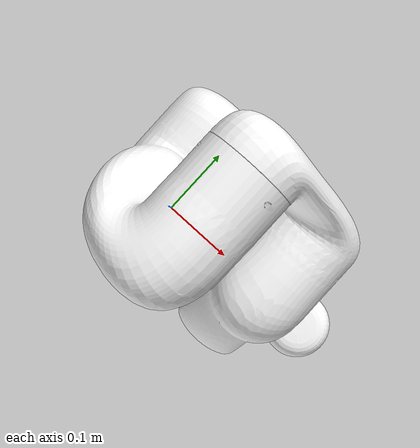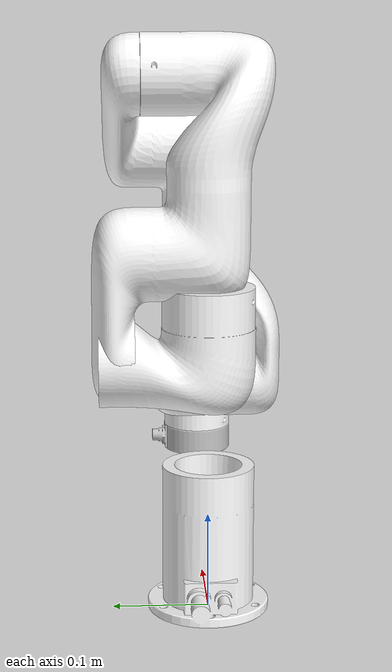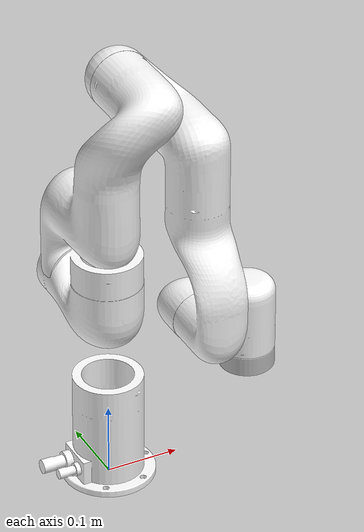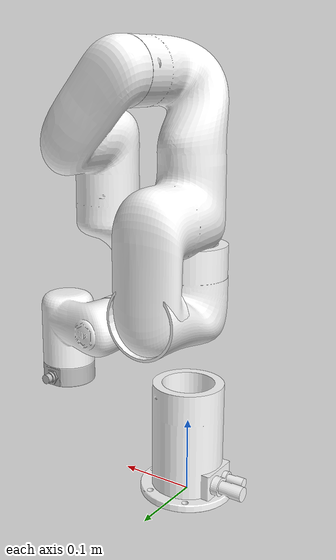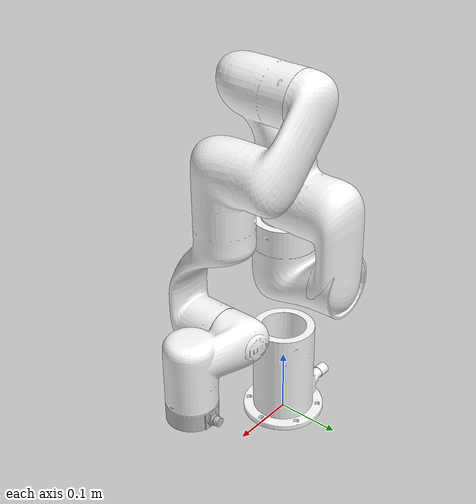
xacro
<?xml version='1.0' encoding='utf-8'?>
<robot xmlns:xacro="http://ros.org/wiki/xacro" name="xarm5">
  <xacro:arg name="prefix" default=""/>
  <xacro:arg name="ros_namespace" default="xarm"/>
  <xacro:arg name="limited" default="false"/>
  <xacro:arg name="effort_control" default="false"/>
  <xacro:arg name="velocity_control" default="false"/>

  <xacro:arg name="add_other_geometry" default="false"/>
  <xacro:arg name="geometry_type" default="box"/>
  <xacro:arg name="geometry_mass" default="0.1"/>
  <xacro:arg name="geometry_height" default="0.1"/>
  <xacro:arg name="geometry_radius" default="0.1"/>
  <xacro:arg name="geometry_length" default="0.1"/>
  <xacro:arg name="geometry_width" default="0.1"/>
  <xacro:arg name="geometry_mesh_filename" default=""/>
  <xacro:arg name="geometry_mesh_origin_xyz" default="0 0 0"/>
  <xacro:arg name="geometry_mesh_origin_rpy" default="0 0 0"/>
  <xacro:arg name="geometry_mesh_tcp_xyz" default="0 0 0"/>
  <xacro:arg name="geometry_mesh_tcp_rpy" default="0 0 0"/>

  <xacro:arg name="add_realsense_d435i" default="false"/>
  <xacro:arg name="model1300" default="false"/>

  <!-- load xarm5 robot -->
  <xacro:include filename="$(find xarm_description)/urdf/xarm5_robot_macro.xacro" />
  <xacro:xarm5_robot prefix="$(arg prefix)" namespace="$(arg ros_namespace)" limited="$(arg limited)"
    effort_control="$(arg effort_control)" velocity_control="$(arg velocity_control)"
    rs_d435i="$(arg add_realsense_d435i)"
    model1300="$(arg model1300)"
    add_other_geometry="$(arg add_other_geometry)"
    geometry_type="$(arg geometry_type)" geometry_mass="$(arg geometry_mass)"
    geometry_height="$(arg geometry_height)" geometry_radius="$(arg geometry_radius)"
    geometry_length="$(arg geometry_length)" geometry_width="$(arg geometry_width)"
    geometry_mesh_filename="$(arg geometry_mesh_filename)"
    geometry_mesh_origin_xyz="$(arg geometry_mesh_origin_xyz)" geometry_mesh_origin_rpy="$(arg geometry_mesh_origin_rpy)"
    geometry_mesh_tcp_xyz="$(arg geometry_mesh_tcp_xyz)" geometry_mesh_tcp_rpy="$(arg geometry_mesh_tcp_rpy)" />

</robot>

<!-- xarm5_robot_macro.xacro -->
<robot xmlns:xacro="http://ros.org/wiki/xacro" name="xarm5" >
  <xacro:macro name="xarm5_robot" params="prefix:='' namespace:='xarm' limited:='false' effort_control:='false'
    velocity_control:='false' attach_to:='world' xyz:='0 0 0' rpy:='0 0 0' load_gazebo_plugin:='true' rs_d435i:='false'
    model1300:='false'
    add_other_geometry:='false'
    geometry_type:='box' geometry_mass:='0.1'
    geometry_radius:='0.1' geometry_height:='0.1'
    geometry_length:='0.1' geometry_width:='0.1'
    geometry_mesh_filename:=''
    geometry_mesh_origin_xyz:='0 0 0'
    geometry_mesh_origin_rpy:='0 0 0'
    geometry_mesh_tcp_xyz:='0 0 0'
    geometry_mesh_tcp_rpy:='0 0 0' ">

    <!-- include xarm5 relative macros: -->
    <xacro:include filename="$(find xarm_description)/urdf/xarm5.urdf.xacro" />
    <xacro:include filename="$(find xarm_description)/urdf/xarm5.transmission.xacro" />
    <xacro:include filename="$(find xarm_description)/urdf/xarm5.gazebo.xacro" />

    <!-- gazebo_plugin -->
    <xacro:if value="${load_gazebo_plugin}">
    <xacro:include filename="$(find xarm_description)/urdf/common.gazebo.xacro" />
    <xacro:gazebo_ros_control_plugin namespace="${namespace}"/>
    </xacro:if>

    <!-- add one world link if no 'attach_to' specified  -->
    <xacro:if value="${attach_to == 'world'}">
      <link name="world" />
    </xacro:if>

    <joint name="world_joint" type="fixed">
      <parent link="${attach_to}" />
      <child link = "${prefix}link_base" />
      <origin xyz="${xyz}" rpy="${rpy}" />
    </joint>

    <xacro:if value="${limited}">
      <xacro:xarm5_urdf prefix="${prefix}"
        joint1_lower_limit="${-pi*0.99}" joint1_upper_limit="${pi*0.99}"
        joint2_lower_limit="${-2.059}" joint2_upper_limit="${2.0944}"
        joint3_lower_limit="${-pi*0.99}" joint3_upper_limit="${0.19198}"
        joint4_lower_limit="${-1.69297}" joint4_upper_limit="${pi*0.99}"
        joint5_lower_limit="${-pi*0.99}" joint5_upper_limit="${pi*0.99}"
        rs_d435i="${rs_d435i}" model1300="${model1300}"/>
    </xacro:if>
    <xacro:unless value="${limited}">
      <xacro:xarm5_urdf prefix="${prefix}" rs_d435i="${rs_d435i}" model1300="${model1300}"/>
    </xacro:unless>

    <xacro:xarm5_transmission prefix="${prefix}" hard_interface="$(eval 'EffortJointInterface' if ${effort_control} else 'VelocityJointInterface' if ${velocity_control} else 'PositionJointInterface')" />

    <xacro:xarm5_gazebo prefix="${prefix}" />

    <xacro:if value="${add_other_geometry}">
      <xacro:include filename="$(find xarm_description)/urdf/other_geometry.urdf.xacro" />
      <xacro:other_geometry prefix="${prefix}" attach_to="${prefix}link_eef"
        geometry_type="${geometry_type}" geometry_mass="${geometry_mass}"
        geometry_height="${geometry_height}" geometry_radius="${geometry_radius}"
        geometry_length="${geometry_length}" geometry_width="${geometry_width}"
        geometry_mesh_filename="${geometry_mesh_filename}"
        geometry_mesh_origin_xyz="${geometry_mesh_origin_xyz}" geometry_mesh_origin_rpy="${geometry_mesh_origin_rpy}"
        geometry_mesh_tcp_xyz="${geometry_mesh_tcp_xyz}" geometry_mesh_tcp_rpy="${geometry_mesh_tcp_rpy}"
      />
    </xacro:if>

  </xacro:macro>

</robot>

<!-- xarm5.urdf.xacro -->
<robot xmlns:xacro="http://ros.org/wiki/xacro">

  <xacro:macro name="xarm5_urdf" params="prefix
    joint1_lower_limit:=${-2.0*pi}  joint1_upper_limit:=${2.0*pi}
    joint2_lower_limit:=${-2.059}  joint2_upper_limit:=${2.0944}
    joint3_lower_limit:=${-3.927}  joint3_upper_limit:=${0.19198}
    joint4_lower_limit:=${-1.69297}  joint4_upper_limit:=${pi}
    joint5_lower_limit:=${-2.0*pi}  joint5_upper_limit:=${2.0*pi}
    rs_d435i:=false  model1300:=false">

    <material name="Black">
      <color rgba="0.0 0.0 0.0 1.0"/>
    </material>

    <material name="Red">
      <color rgba="0.8 0.0 0.0 1.0"/>
    </material>

    <material name="White">
      <color rgba="1.0 1.0 1.0 1.0"/>
    </material>

    <material name="Silver">
      <color rgba="0.753 0.753 0.753 1.0"/>
    </material>

    <link
      name="${prefix}link_base">
      <inertial>
        <origin
          xyz="-0.00218 -0.00023 0.08604"
          rpy="0 0 0" />
        <mass
          value="1.95" />
        <inertia
          ixx="0.004805"
          ixy="-8.33E-06"
          ixz="0.00026847"
          iyy="0.0050349"
          iyz="7.23E-06"
          izz="0.0025418" />
      </inertial>
      <visual>
        <origin
          xyz="0 0 0"
          rpy="0 0 0" />
        <geometry>
          <mesh
            filename="package://xarm_description/meshes/xarm5/visual/base_link.STL" />
        </geometry>
        <material name="White" />
      </visual>
      <collision>
        <origin
          xyz="0 0 0"
          rpy="0 0 0" />
        <geometry>
          <mesh
            filename="package://xarm_description/meshes/xarm5/visual/base_link.STL" />
        </geometry>
      </collision>
    </link>
    <link
      name="${prefix}link1">
      <inertial>
        <origin
          xyz="0.00016 0.02064 -0.01556"
          rpy="0 0 0" />
        <mass
          value="1.85" />
        <inertia
          ixx="0.0046885"
          ixy="-8.67E-06"
          ixz="2.439E-05"
          iyy="0.0041688"
          iyz="0.0006114"
          izz="0.0024758" />
      </inertial>
      <visual>
        <origin
          xyz="0 0 0"
          rpy="0 0 0" />
        <geometry>
          <mesh
            filename="package://xarm_description/meshes/xarm5/visual/link1.STL" />
        </geometry>
        <material name="White" />
      </visual>
      <collision>
        <origin
          xyz="0 0 0"
          rpy="0 0 0" />
        <geometry>
          <mesh
            filename="package://xarm_description/meshes/xarm5/visual/link1.STL" />
        </geometry>
      </collision>
    </link>
    <joint
      name="${prefix}joint1"
      type="revolute">
      <origin
        xyz="0 0 0.267"
        rpy="0 0 0" />
      <parent
        link="${prefix}link_base" />
      <child
        link="${prefix}link1" />
      <axis
        xyz="0 0 1" />
     <limit
        lower="${joint1_lower_limit}"
        upper="${joint1_upper_limit}"
        effort="50"
        velocity="3.14" />
      <dynamics
        damping="10"
        friction="1" />
    </joint>
    <link
      name="${prefix}link2">
      <inertial>
        <origin
          xyz="0.0351 -0.21375 0.02835"
          rpy="0 0 0" />
        <mass
          value="1.71" />
        <inertia
          ixx="0.024904"
          ixy="-0.004271"
          ixz="-0.0008356"
          iyy="0.004901"
          iyz="0.0052393"
          izz="0.0238188" />
      </inertial>
      <visual>
        <origin
          xyz="0 0 0"
          rpy="0 0 0" />
        <geometry>
          <mesh
            filename="package://xarm_description/meshes/xarm5/visual/link2.STL" />
        </geometry>
        <material name="White" />
      </visual>
      <collision>
        <origin
          xyz="0 0 0"
          rpy="0 0 0" />
        <geometry>
          <mesh
            filename="package://xarm_description/meshes/xarm5/visual/link2.STL" />
        </geometry>
      </collision>
    </link>
    <joint
      name="${prefix}joint2"
      type="revolute">
      <origin
        xyz="0 0 0"
        rpy="-1.5708 0 0" />
      <parent
        link="${prefix}link1" />
      <child
        link="${prefix}link2" />
      <axis
        xyz="0 0 1" />
      <limit
        lower="${joint2_lower_limit}"
        upper="${joint2_upper_limit}"
        effort="50"
        velocity="3.14" />
      <dynamics
        damping="10"
        friction="1" />
    </joint>
    <link
      name="${prefix}link3">
      <inertial>
        <origin
          xyz="0.06716 0.2299 -0.00249"
          rpy="0 0 0" />
        <mass
          value="1.74" />
        <inertia
          ixx="0.0335922"
          ixy="0.0040788"
          ixz="-0.0014658"
          iyy="0.0055857"
          iyz="-0.0080609"
          izz="0.0318905" />
      </inertial>
      <visual>
        <origin
          xyz="0 0 0"
          rpy="0 0 0" />
        <geometry>
          <mesh
            filename="package://xarm_description/meshes/xarm5/visual/link3.STL" />
        </geometry>
        <material name="White" />
      </visual>
      <collision>
        <origin
          xyz="0 0 0"
          rpy="0 0 0" />
        <geometry>
          <mesh
            filename="package://xarm_description/meshes/xarm5/visual/link3.STL" />
        </geometry>
      </collision>
    </link>
    <joint
      name="${prefix}joint3"
      type="revolute">
      <origin
        xyz="0.0535 -0.2845 0"
        rpy="0 0 0" />
      <parent
        link="${prefix}link2" />
      <child
        link="${prefix}link3" />
      <axis
        xyz="0 0 1" />
      <limit
        lower="${joint3_lower_limit}"
        upper="${joint3_upper_limit}"
        effort="30"
        velocity="3.14" />
      <dynamics
        damping="5"
        friction="1" />
    </joint>
    <link
      name="${prefix}link4">
      <inertial>
        <origin
          xyz="0.0636 0.02203 0.00355"
          rpy="0 0 0" />
        <mass
          value="1.13" />
        <inertia
          ixx="0.0010927"
          ixy="0.0003076"
          ixz="-0.0002076"
          iyy="0.0016058"
          iyz="-8.863E-05"
          izz="0.0019148" />
      </inertial>
      <visual>
        <origin
          xyz="0 0 0"
          rpy="0 0 0" />
        <geometry>
          <mesh
            filename="package://xarm_description/meshes/xarm5/visual/link4.STL" />
        </geometry>
        <material name="White" />
      </visual>
      <collision>
        <origin
          xyz="0 0 0"
          rpy="0 0 0" />
        <geometry>
          <mesh
            filename="package://xarm_description/meshes/xarm5/visual/link4.STL" />
        </geometry>
      </collision>
    </link>
    <joint
      name="${prefix}joint4"
      type="revolute">
      <origin
        xyz="0.0775 0.3425 0"
        rpy="0 0 0" />
      <parent
        link="${prefix}link3" />
      <child
        link="${prefix}link4" />
      <axis
        xyz="0 0 1" />
      <limit
        lower="${joint4_lower_limit}"
        upper="${joint4_upper_limit}"
        effort="20"
        velocity="3.14" />
      <dynamics
        damping="3"
        friction="1" />
    </joint>
    <link
      name="${prefix}link5">
      <inertial>
        <origin
          xyz="-3E-05 -0.00677 -0.01098"
          rpy="0 0 0" />
        <mass
          value="0.16" />
        <inertia
          ixx="9.341E-05"
          ixy="0.0"
          ixz="0.0"
          iyy="5.87E-05"
          iyz="3.57E-06"
          izz="1.33E-05" />
      </inertial>
      <visual>
        <origin
          xyz="0 0 0"
          rpy="0 0 0" />
        <geometry>
          <xacro:if value="${model1300}">
            <mesh filename="package://xarm_description/meshes/end_tool/visual/end_tool_1300.STL" />
          </xacro:if>
          <xacro:unless value="${model1300}">
            <mesh filename="package://xarm_description/meshes/xarm5/visual/link5.STL" />
          </xacro:unless>
        </geometry>
        <material name="Silver" />
      </visual>
      <collision>
        <origin
          xyz="0 0 0"
          rpy="0 0 0" />
        <geometry>
          <xacro:if value="${model1300}">
            <mesh filename="package://xarm_description/meshes/end_tool/collision/end_tool_1300.STL" />
          </xacro:if>
          <xacro:unless value="${model1300}">
            <mesh filename="package://xarm_description/meshes/end_tool/collision/end_tool.STL" />
          </xacro:unless>
        </geometry>
      </collision>
    </link>
    <joint
      name="${prefix}joint5"
      type="revolute">
      <origin
        xyz="0.076 0.097 0"
        rpy="-1.5708 0 0" />
      <parent
        link="${prefix}link4" />
      <child
        link="${prefix}link5" />
      <axis
        xyz="0 0 1" />
      <limit
        lower="${joint5_lower_limit}"
        upper="${joint5_upper_limit}"
        effort="20"
        velocity="3.14" />
      <dynamics
        damping="3"
        friction="1" />
    </joint>

  <xacro:if value="${rs_d435i}">
    <link name="${prefix}link_eef">
      <visual>
        <origin
          xyz="0 0 0"
          rpy="0 0 0" />
        <geometry>
          <mesh
            filename="package://d435i_xarm_setup/mesh/d435_with_cam_stand.STL" />
        </geometry>
        <material name="Silver" />
      </visual>
      <collision>
        <origin
          xyz="0 0 0"
          rpy="0 0 0" />
        <geometry>
          <mesh
            filename="package://d435i_xarm_setup/mesh/d435_with_cam_stand_collision.STL" />
        </geometry>
      </collision>
    </link>
  </xacro:if>

  <xacro:unless value="${rs_d435i}">
    <link name="${prefix}link_eef"/>
  </xacro:unless>

  <joint
    name="${prefix}joint_eef"
    type="fixed">
    <origin
      xyz="0 0 0"
      rpy="0 0 0" />
    <parent
      link="${prefix}link5" />
    <child
      link="${prefix}link_eef" />
  </joint>

  </xacro:macro>
</robot>
